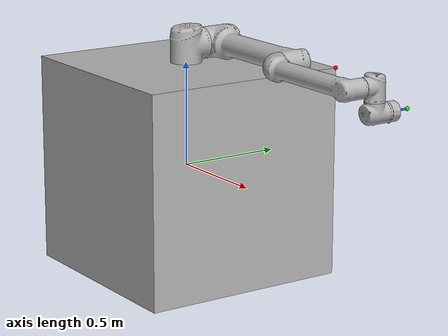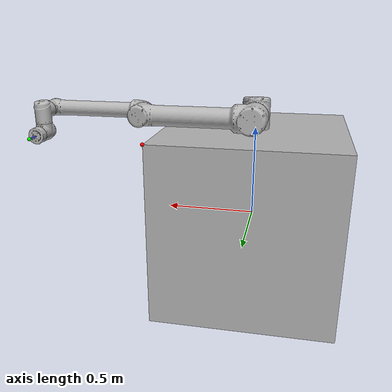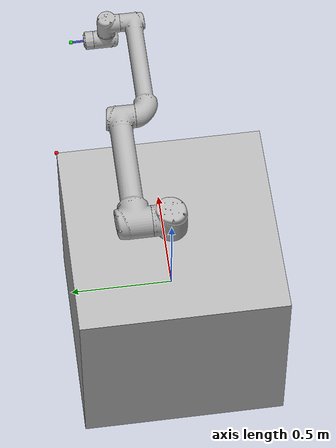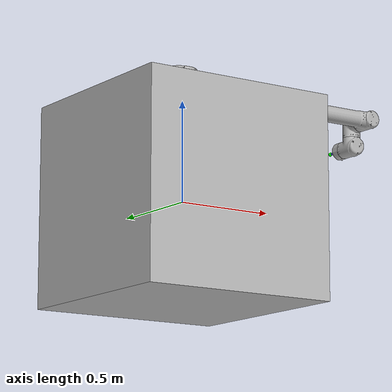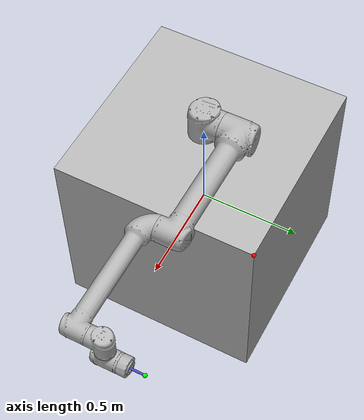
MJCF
<mujoco model="ur10e">
  <compiler angle="radian"/>
  <option cone="elliptic" gravity="0 0 0" impratio="5" timestep="0.01" tolerance="1e-10" />

  <asset>
    <mesh name="base" file="meshes/ur10e/collision/base.stl"/>
    <mesh name="shoulder" file="meshes/ur10e/collision/shoulder.stl"/>
    <mesh name="upperarm" file="meshes/ur10e/collision/upperarm.stl"/>
    <mesh name="forearm" file="meshes/ur10e/collision/forearm.stl"/>
    <mesh name="wrist1" file="meshes/ur10e/collision/wrist1.stl"/>
    <mesh name="wrist2" file="meshes/ur10e/collision/wrist2.stl"/>
    <mesh name="wrist3" file="meshes/ur10e/collision/wrist3.stl"/>
  </asset>

  <worldbody>
    <site name="target" pos="0.5 0.5 0.5" size="0.01" rgba="1 0 0 1"/>
    <body name="base_link" pos="0 0 0">
      <freejoint name='base_freejoint'/>
      <inertial pos="0 0 0" mass="104" diaginertia="16.676106 16.676106 16.67125"/>
      <geom size="0.5 0.5 0.5" type="box" contype="2" conaffinity="1" group="1" density="0" rgba="0.7 0.7 0.7 1"/>
      <geom type="mesh" contype="0" conaffinity="0" rgba="0.7 0.7 0.7 1" mesh="base"/>
      <body name="shoulder_link" pos="0 0 0.581">
        <inertial pos="0 0 0" mass="7.778" diaginertia="0.0315 0.0315 0.02188"/>
        <joint name="shoulder_pan_joint" pos="0 0 0" axis="0 0 1" range="-6.28318 6.28318"/>
        <geom type="mesh" contype="2" conaffinity="1" group="1" density="0" rgba="0.7 0.7 0.7 1" mesh="shoulder"/>
        <geom type="mesh" contype="0" conaffinity="0" rgba="0.7 0.7 0.7 1" mesh="shoulder"/>
        <body name="upper_arm_link" pos="0 0.176 0" quat="0.707105 0 0.707108 0">
          <inertial pos="0 0 0.3065" mass="12.93" diaginertia="0.42307 0.42307 0.0364"/>
          <joint name="shoulder_lift_joint" pos="0 0 0" axis="0 1 0" range="-6.28318 6.28318"/>
          <geom type="mesh" contype="2" conaffinity="1" group="1" density="0" rgba="0.7 0.7 0.7 1" mesh="upperarm"/>
          <geom type="mesh" contype="0" conaffinity="0" rgba="0.7 0.7 0.7 1" mesh="upperarm"/>
          <body name="forearm_link" pos="0 -0.137 0.613">
            <inertial pos="0 0 0.2855" mass="3.87" diaginertia="0.11059 0.11059 0.01088"/>
            <joint name="elbow_joint" pos="0 0 0" axis="0 1 0" range="-3.14159 3.14159"/>
            <geom type="mesh" contype="2" conaffinity="1" group="1" density="0" rgba="0.7 0.7 0.7 1" mesh="forearm"/>
            <geom type="mesh" contype="0" conaffinity="0" rgba="0.7 0.7 0.7 1" mesh="forearm"/>
            <body name="wrist_1_link" pos="0 0 0.571" quat="0.707105 0 0.707108 0">
              <inertial pos="0 0.135 0" quat="0.5 0.5 -0.5 0.5" mass="1.96" diaginertia="0.0055125 0.005108 0.005108"/>
              <joint name="wrist_1_joint" pos="0 0 0" axis="0 1 0" range="-6.28318 6.28318"/>
              <geom type="mesh" contype="2" conaffinity="1" group="1" density="0" rgba="0.7 0.7 0.7 1" mesh="wrist1"/>
              <geom type="mesh" contype="0" conaffinity="0" rgba="0.7 0.7 0.7 1" mesh="wrist1"/>
              <body name="wrist_2_link" pos="0 0.135 0">
                <inertial pos="0 0 0.12" quat="0.5 0.5 -0.5 0.5" mass="1.96" diaginertia="0.0055125 0.005108 0.005108"/>
                <joint name="wrist_2_joint" pos="0 0 0" axis="0 0 1" range="-6.28318 6.28318"/>
                <geom type="mesh" contype="2" conaffinity="1" group="1" density="0" rgba="0.7 0.7 0.7 1" mesh="wrist2"/>
                <geom type="mesh" contype="0" conaffinity="0" rgba="0.7 0.7 0.7 1" mesh="wrist2"/>
                <body name="wrist_3_link" pos="0 0 0.12">
                  <inertial pos="0 0.092 0" quat="0.5 0.5 -0.5 0.5" mass="0.202" diaginertia="0.000205 0.000144 0.000144"/>
                  <joint name="wrist_3_joint" pos="0 0 0" axis="0 1 0" range="-6.28318 6.28318"/>
                  <geom type="mesh" contype="2" conaffinity="1" group="1" density="0" rgba="0.7 0.7 0.7 1" mesh="wrist3"/>
                  <geom type="mesh" contype="0" conaffinity="0" rgba="0.7 0.7 0.7 1" mesh="wrist3"/>
                  <body name="ee_stick" pos="0 0.092 0" euler="-1.57 0 0">
                    <geom name="ee_stick_geom" type="cylinder" contype="2" conaffinity="1" size="0.005 0.088 " density ='0' rgba="0.3 0.3 0.9 1"/>
                    <site name="end_effector" pos="0 0 0.088" size="0.01" rgba="0 1 0 1"/>
                  </body>
                </body>
              </body>
            </body>
          </body>
        </body>
      </body>
    </body>
  </worldbody>

  <actuator>
    <!-- 각 관절을 제어하기 위한 actuator -->
    <general ctrllimited="true" ctrlrange="-330 330" forcelimited="true" forcerange="-330 330" joint="shoulder_pan_joint" name="shoulder_pan_T"/>
    <general ctrllimited="true" ctrlrange="-330 330" forcelimited="true" forcerange="-330 330" joint="shoulder_lift_joint" name="shoulder_lift_T"/>
    <general ctrllimited="true" ctrlrange="-150 150" forcelimited="true" forcerange="-150 150" joint="elbow_joint" name="elbow_T"/>
    <general ctrllimited="true" ctrlrange="-54 54" forcelimited="true" forcerange="-54 54" joint="wrist_1_joint" name="wrist_1_T"/>
    <general ctrllimited="true" ctrlrange="-54 54" forcelimited="true" forcerange="-54 54" joint="wrist_2_joint" name="wrist_2_T"/>
    <general ctrllimited="true" ctrlrange="-54 54" forcelimited="true" forcerange="-54 54" joint="wrist_3_joint" name="wrist_3_T"/>
  </actuator>
  <sensor>
    <!-- 각 관절의 위치(각도)를 측정 -->
    <jointpos joint="shoulder_pan_joint" name="shoulder_pan_pos"/>
    <jointpos joint="shoulder_lift_joint" name="shoulder_lift_pos"/>
    <jointpos joint="elbow_joint" name="elbow_pos"/>
    <jointpos joint="wrist_1_joint" name="wrist_1_pos"/>
    <jointpos joint="wrist_2_joint" name="wrist_2_pos"/>
    <jointpos joint="wrist_3_joint" name="wrist_3_pos"/>

    <!-- 각 관절의 속도(angular velocity)를 측정 -->
    <jointvel joint="shoulder_pan_joint" name="shoulder_pan_vel"/>
    <jointvel joint="shoulder_lift_joint" name="shoulder_lift_vel"/>
    <jointvel joint="elbow_joint" name="elbow_vel"/>
    <jointvel joint="wrist_1_joint" name="wrist_1_vel"/>
    <jointvel joint="wrist_2_joint" name="wrist_2_vel"/>
    <jointvel joint="wrist_3_joint" name="wrist_3_vel"/>
  </sensor>

</mujoco>
